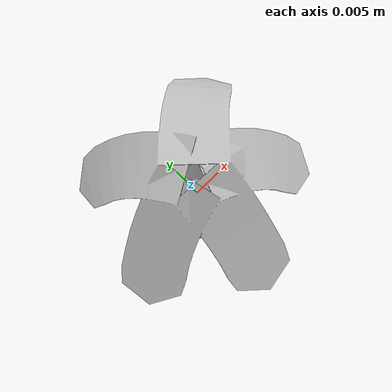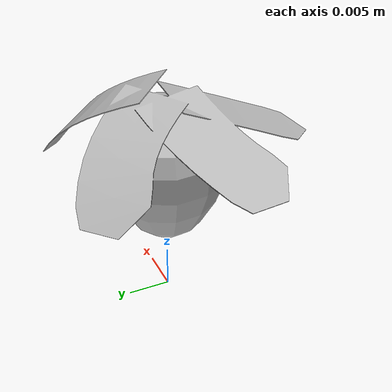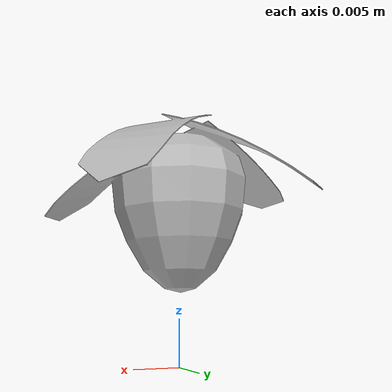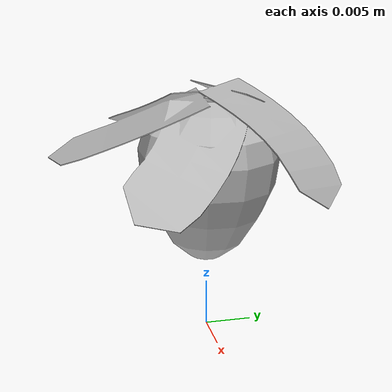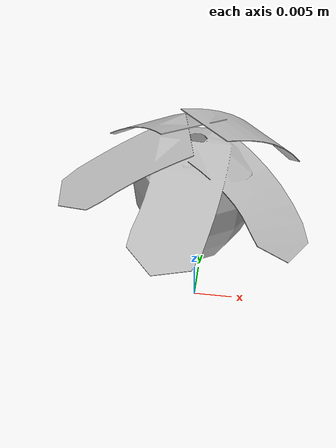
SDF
<?xml version='1.0'?>
<sdf version="1.5">
  <model name="strawberry_unripe_09">
    <pose>0 0 0.02 3.14 0 0</pose>
    <static>false</static>
    <link name="link">
      <inertial>
        <mass>0.005</mass>
        <inertia>
          <ixx>0.000001397</ixx>
          <iyy>0.000001397</iyy>
          <izz>0.000000919</izz>
        </inertia>
      </inertial>
      <collision name="collision">
        <geometry>
          <mesh>
            <uri>model://strawberry_unripe_09/meshes/visual.dae</uri>
          </mesh>
        </geometry>
      </collision>
      <visual name="visual">
        <geometry>
          <mesh>
            <uri>model://strawberry_unripe_09/meshes/visual.dae</uri>
          </mesh>
        </geometry>
        <material>
          <script>
            <uri>model://strawberry_unripe_09/materials/scripts</uri>
            <uri>model://strawberry_unripe_09/materials/textures</uri>
            <name>strawberry_unripe_09</name>
          </script>
        </material>
      </visual>
    </link>
  </model>
</sdf>
